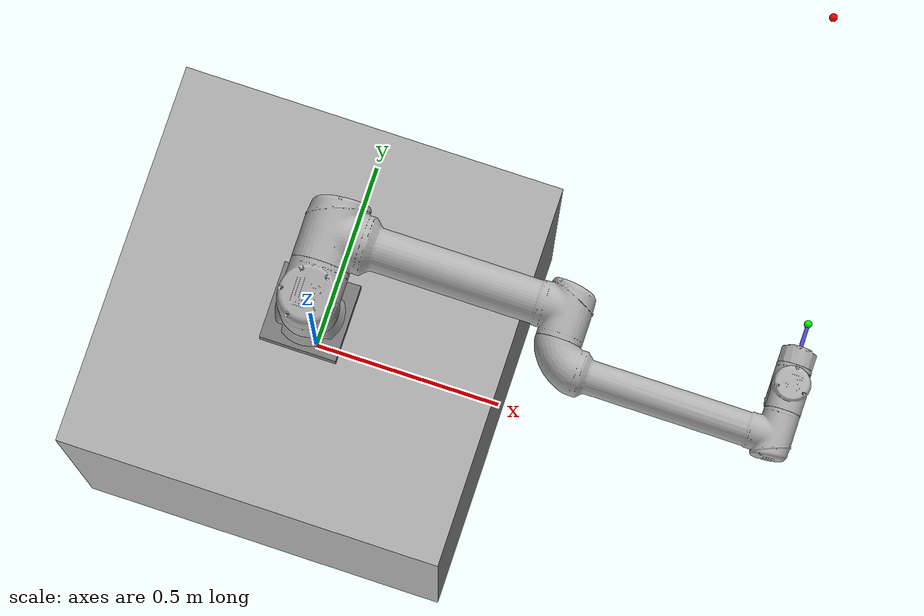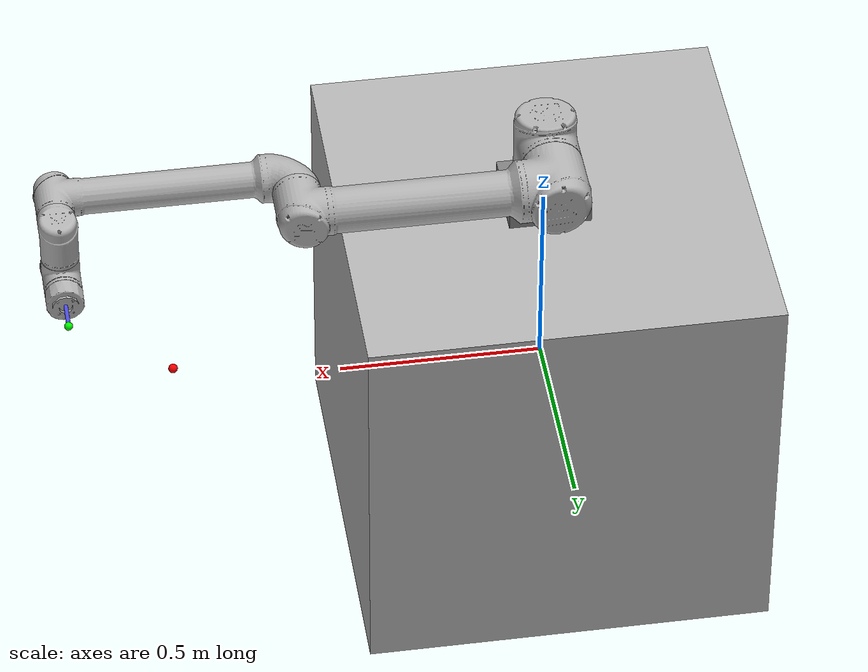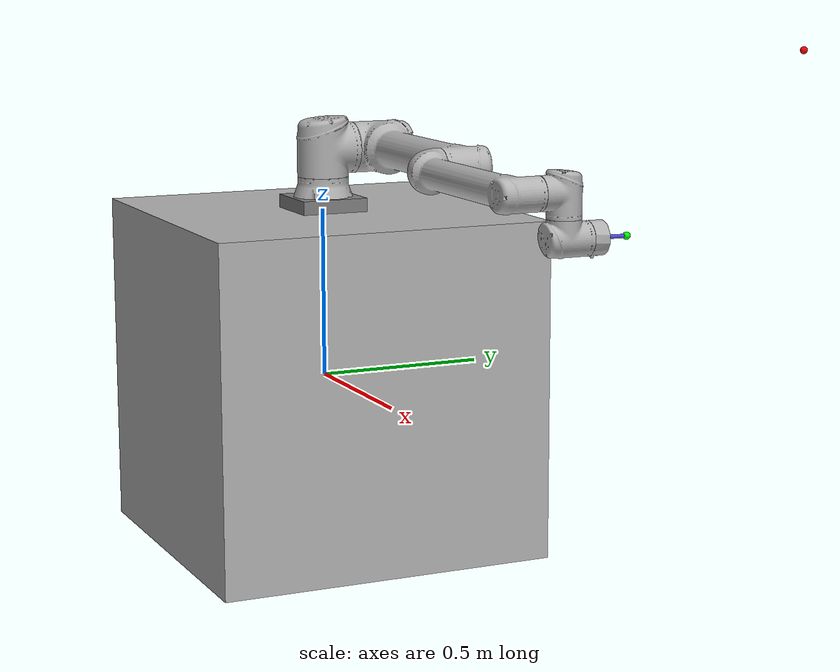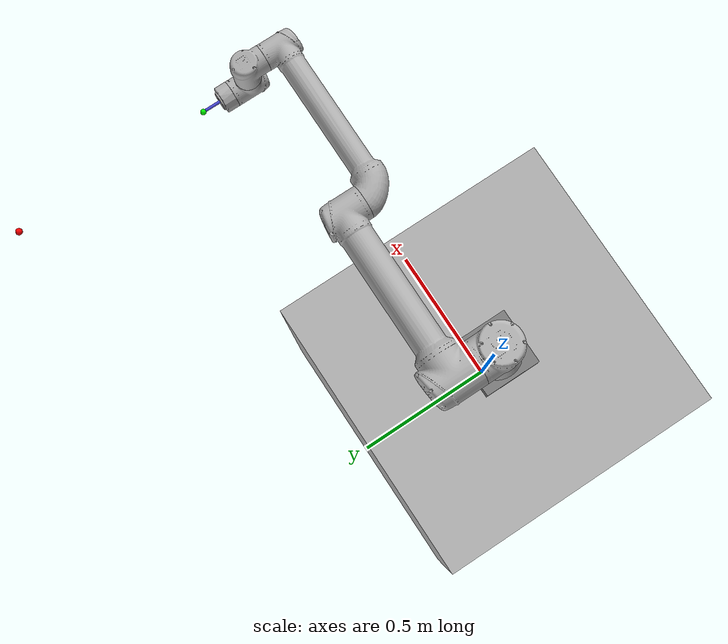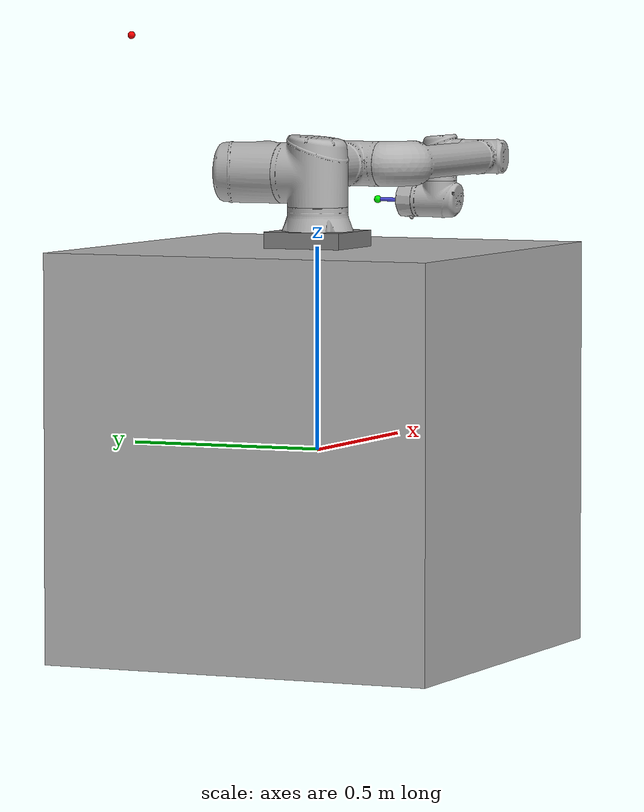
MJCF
<mujoco model="ur10e">
  <compiler angle="radian"/>
  <option cone="elliptic" gravity="0 0 0" impratio="1" timestep="0.01" tolerance="1e-10" />

  <include file="arm/assets.xml" />

  <worldbody>
    <body name="base_box" pos="0 0 0">
      <freejoint name='base_freejoint'/>
      <inertial pos="0 0 0" mass="104" diaginertia="16.676106 16.676106 16.67125"/>
      <geom size="0.5 0.5 0.5" type="box" contype="2" conaffinity="1" group="1" rgba="0.7 0.7 0.7 1"/>
      <body name="arm_base" pos="0 0 0.5">
        <geom name="arm_base_geom" type="box" mass="0" size="0.1 0.1 0.04" pos="0 0 0"/>
        <include file="arm/arm1.xml" />
      </body>
    </body>
    <body name="anchor" pos="1.0 1.0 1.0">
      <site name="anchor_site" pos="0 0 0" size="0.01" rgba="1 0 0 1"/>
    </body>
  </worldbody>

  <equality>
    <weld site1="anchor_site" site2="end_effector"/>
  </equality>

  <actuator>
    <general ctrllimited="true" ctrlrange="-330 330" forcelimited="true" forcerange="-330 330" joint="shoulder_pan_joint" name="shoulder_pan_T"/>
    <general ctrllimited="true" ctrlrange="-330 330" forcelimited="true" forcerange="-330 330" joint="shoulder_lift_joint" name="shoulder_lift_T"/>
    <general ctrllimited="true" ctrlrange="-150 150" forcelimited="true" forcerange="-150 150" joint="elbow_joint" name="elbow_T"/>
    <general ctrllimited="true" ctrlrange="-54 54" forcelimited="true" forcerange="-54 54" joint="wrist_1_joint" name="wrist_1_T"/>
    <general ctrllimited="true" ctrlrange="-54 54" forcelimited="true" forcerange="-54 54" joint="wrist_2_joint" name="wrist_2_T"/>
    <general ctrllimited="true" ctrlrange="-54 54" forcelimited="true" forcerange="-54 54" joint="wrist_3_joint" name="wrist_3_T"/>
  </actuator>

  <sensor>
    <jointpos joint="shoulder_pan_joint" name="shoulder_pan_pos"/>
    <jointpos joint="shoulder_lift_joint" name="shoulder_lift_pos"/>
    <jointpos joint="elbow_joint" name="elbow_pos"/>
    <jointpos joint="wrist_1_joint" name="wrist_1_pos"/>
    <jointpos joint="wrist_2_joint" name="wrist_2_pos"/>
    <jointpos joint="wrist_3_joint" name="wrist_3_pos"/>

    <jointvel joint="shoulder_pan_joint" name="shoulder_pan_vel"/>
    <jointvel joint="shoulder_lift_joint" name="shoulder_lift_vel"/>
    <jointvel joint="elbow_joint" name="elbow_vel"/>
    <jointvel joint="wrist_1_joint" name="wrist_1_vel"/>
    <jointvel joint="wrist_2_joint" name="wrist_2_vel"/>
    <jointvel joint="wrist_3_joint" name="wrist_3_vel"/>
  </sensor>

  <keyframe>
    <key name="initial_pose" qpos="0.55258695 0.23122673 1.65074419 0.12838892 0.80946158 0.40329026 0.40699533 -34.2 0.16737155 -1.80304661 -8.534124 8.20929631 -2.03858489"/>
  </keyframe>

</mujoco>

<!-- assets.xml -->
<mujoco>
  <asset>
    <mesh name="base" file="arm/meshes/ur10e/collision/base.stl"/>
    <mesh name="shoulder" file="arm/meshes/ur10e/collision/shoulder.stl"/>
    <mesh name="upperarm" file="arm/meshes/ur10e/collision/upperarm.stl"/>
    <mesh name="forearm" file="arm/meshes/ur10e/collision/forearm.stl"/>
    <mesh name="wrist1" file="arm/meshes/ur10e/collision/wrist1.stl"/>
    <mesh name="wrist2" file="arm/meshes/ur10e/collision/wrist2.stl"/>
    <mesh name="wrist3" file="arm/meshes/ur10e/collision/wrist3.stl"/>
  </asset>
</mujoco>

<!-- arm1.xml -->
<mujoco model="ur10e">
  <body name="base_link" pos="0 0 0">
    <inertial mass="4.0" pos="0 0 0" diaginertia="0.0061063308908 0.0061063308908 0.01125"/>
    <geom type="mesh" contype="0" conaffinity="0" rgba="0.7 0.7 0.7 1" mesh="base"/>
    <body name="shoulder_link" pos="0 0 0.181">
      <inertial pos="0 0 0" mass="7.778" diaginertia="0.0315 0.0315 0.02188"/>
      <joint name="shoulder_pan_joint" pos="0 0 0" axis="0 0 1"/>
      <geom type="mesh" contype="2" conaffinity="1" group="1" density="0" rgba="0.7 0.7 0.7 1" mesh="shoulder"/>
      <geom type="mesh" contype="0" conaffinity="0" rgba="0.7 0.7 0.7 1" mesh="shoulder"/>
      <body name="upper_arm_link" pos="0 0.176 0" quat="0.707105 0 0.707108 0">
        <inertial pos="0 0 0.3065" mass="12.93" diaginertia="0.42307 0.42307 0.0364"/>
        <joint name="shoulder_lift_joint" pos="0 0 0" axis="0 1 0"/>
        <geom type="mesh" contype="2" conaffinity="1" group="1" density="0" rgba="0.7 0.7 0.7 1" mesh="upperarm"/>
        <geom type="mesh" contype="0" conaffinity="0" rgba="0.7 0.7 0.7 1" mesh="upperarm"/>
        <body name="forearm_link" pos="0 -0.137 0.613">
          <inertial pos="0 0 0.2855" mass="3.87" diaginertia="0.11059 0.11059 0.01088"/>
          <joint name="elbow_joint" pos="0 0 0" axis="0 1 0"/>
          <geom type="mesh" contype="2" conaffinity="1" group="1" density="0" rgba="0.7 0.7 0.7 1" mesh="forearm"/>
          <geom type="mesh" contype="0" conaffinity="0" rgba="0.7 0.7 0.7 1" mesh="forearm"/>
          <body name="wrist_1_link" pos="0 0 0.571" quat="0.707105 0 0.707108 0">
            <inertial pos="0 0.135 0" quat="0.5 0.5 -0.5 0.5" mass="1.96" diaginertia="0.005108 0.005108 0.0055125"/>
            <joint name="wrist_1_joint" pos="0 0 0" axis="0 1 0"/>
            <geom type="mesh" contype="2" conaffinity="1" group="1" density="0" rgba="0.7 0.7 0.7 1" mesh="wrist1"/>
            <geom type="mesh" contype="0" conaffinity="0" rgba="0.7 0.7 0.7 1" mesh="wrist1"/>
            <body name="wrist_2_link" pos="0 0.135 0">
              <inertial pos="0 0 0.12" quat="0.5 0.5 -0.5 0.5" mass="1.96" diaginertia="0.005108 0.005108 0.0055125"/>
              <joint name="wrist_2_joint" pos="0 0 0" axis="0 0 1"/>
              <geom type="mesh" contype="2" conaffinity="1" group="1" density="0" rgba="0.7 0.7 0.7 1" mesh="wrist2"/>
              <geom type="mesh" contype="0" conaffinity="0" rgba="0.7 0.7 0.7 1" mesh="wrist2"/>
              <body name="wrist_3_link" pos="0 0 0.12">
                <inertial pos="0 0.092 0" quat="0.5 0.5 -0.5 0.5" mass="0.202" diaginertia="0.000205 0.000144 0.000144"/>
                <joint name="wrist_3_joint" pos="0 0 0" axis="0 1 0"/>
                <geom type="mesh" contype="2" conaffinity="1" group="1" density="0" rgba="0.7 0.7 0.7 1" mesh="wrist3"/>
                <geom type="mesh" contype="0" conaffinity="0" rgba="0.7 0.7 0.7 1" mesh="wrist3"/>
                <body name="ee_stick" pos="0 0.092 0" euler="-1.57 0 0">
                  <geom name="ee_stick_geom" type="cylinder" contype="2" conaffinity="1" size="0.005 0.088 " density ='0' rgba="0.3 0.3 0.9 1"/>
                  <site name="end_effector" pos="0 0 0.088" size="0.01" rgba="0 1 0 1"/>
                </body>
              </body>
            </body>
          </body>
        </body>
      </body>
    </body>
  </body>
</mujoco>
